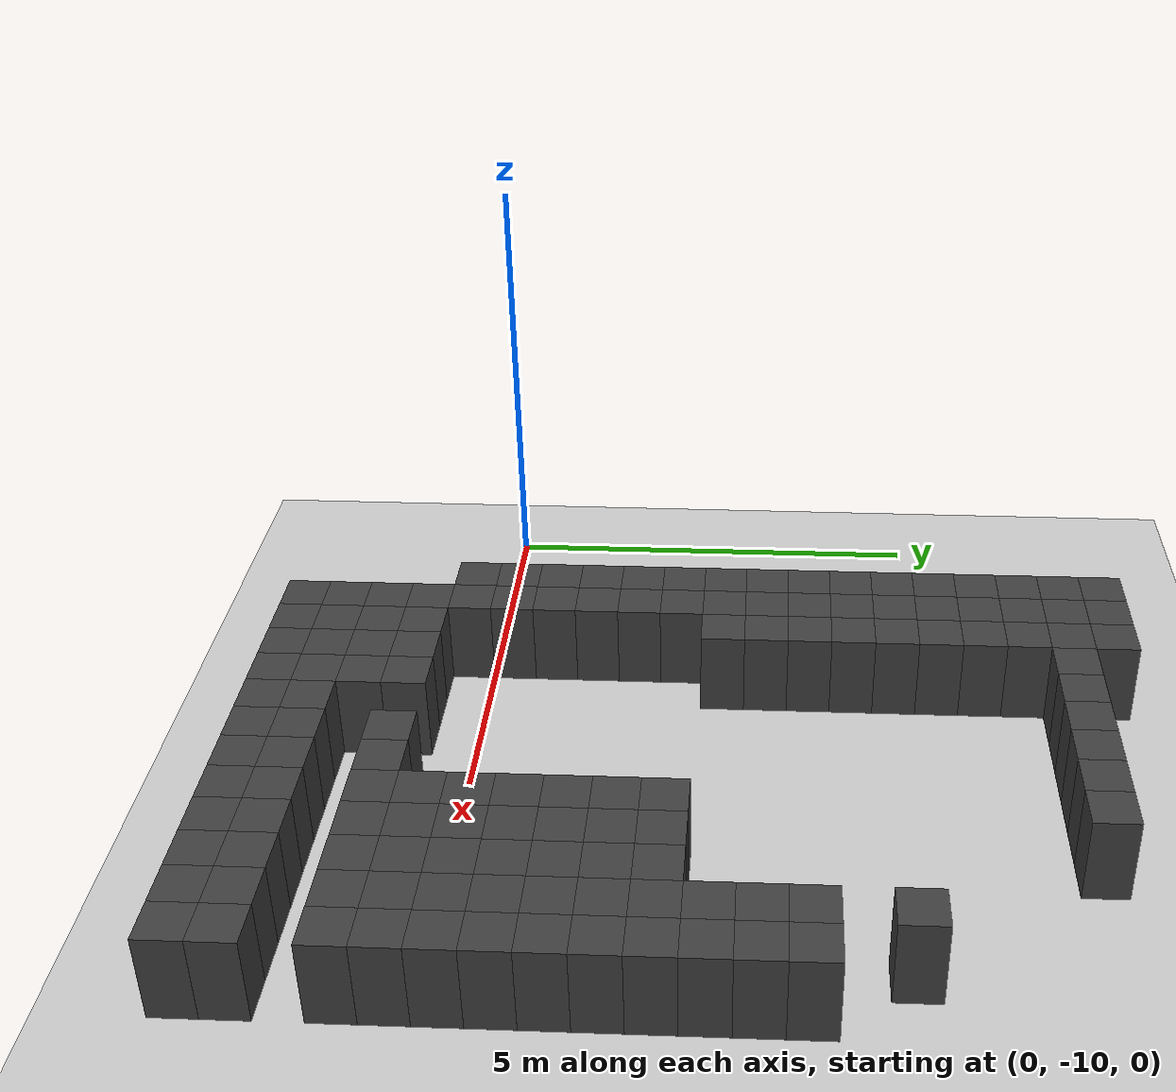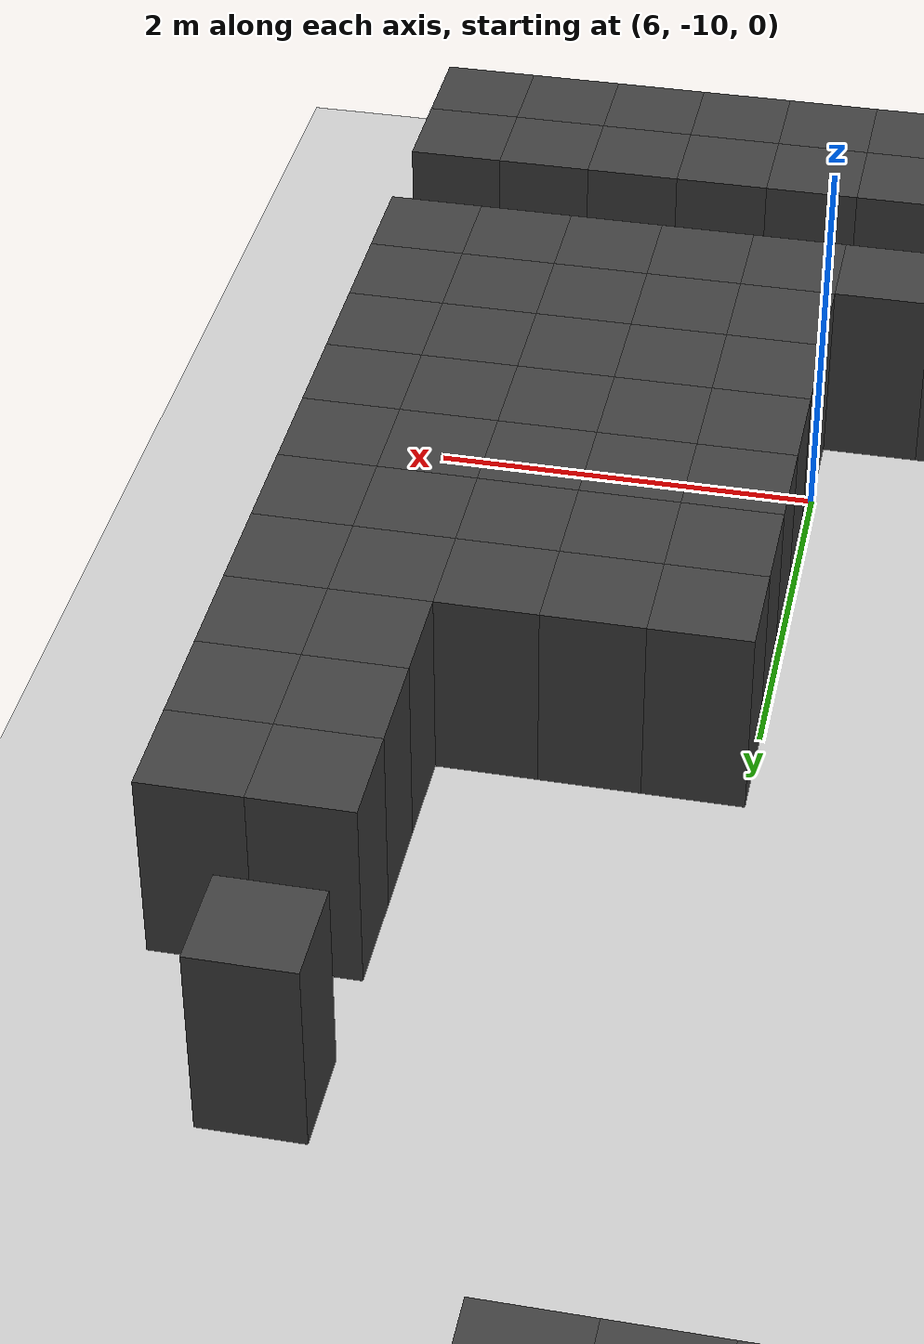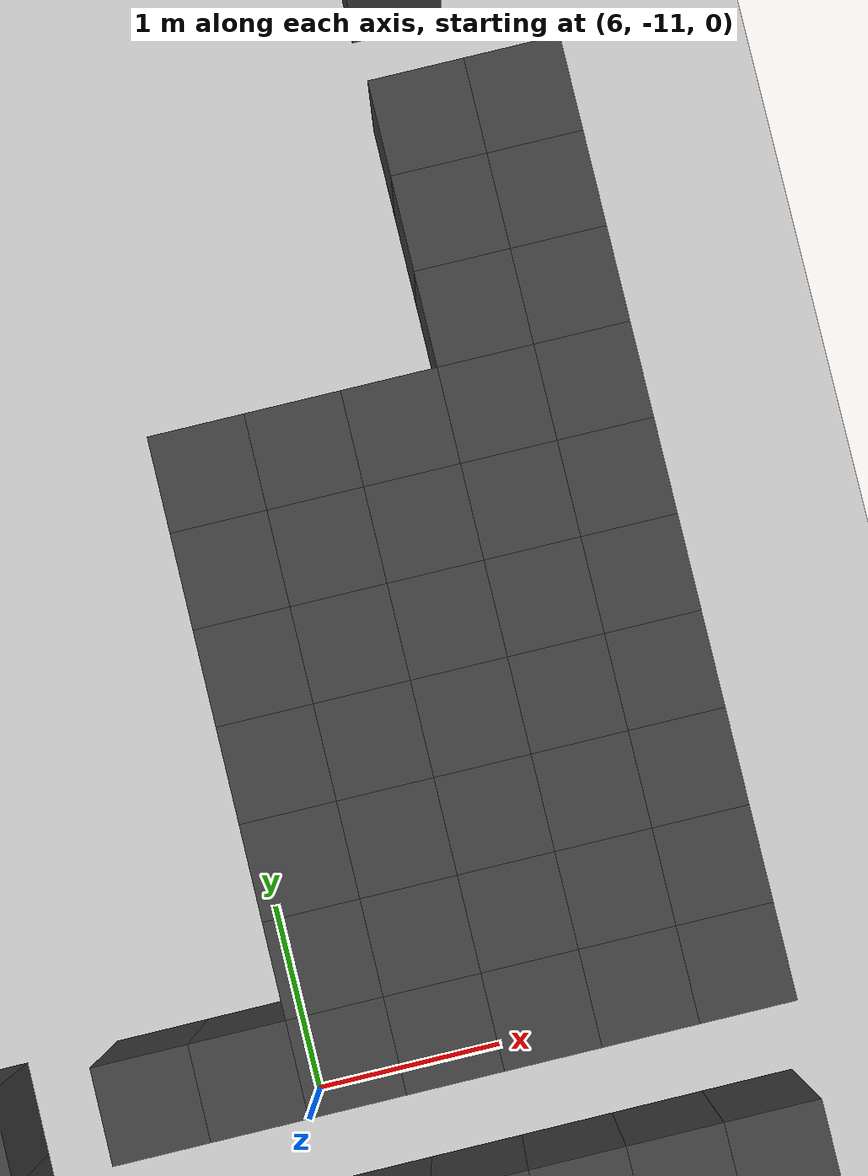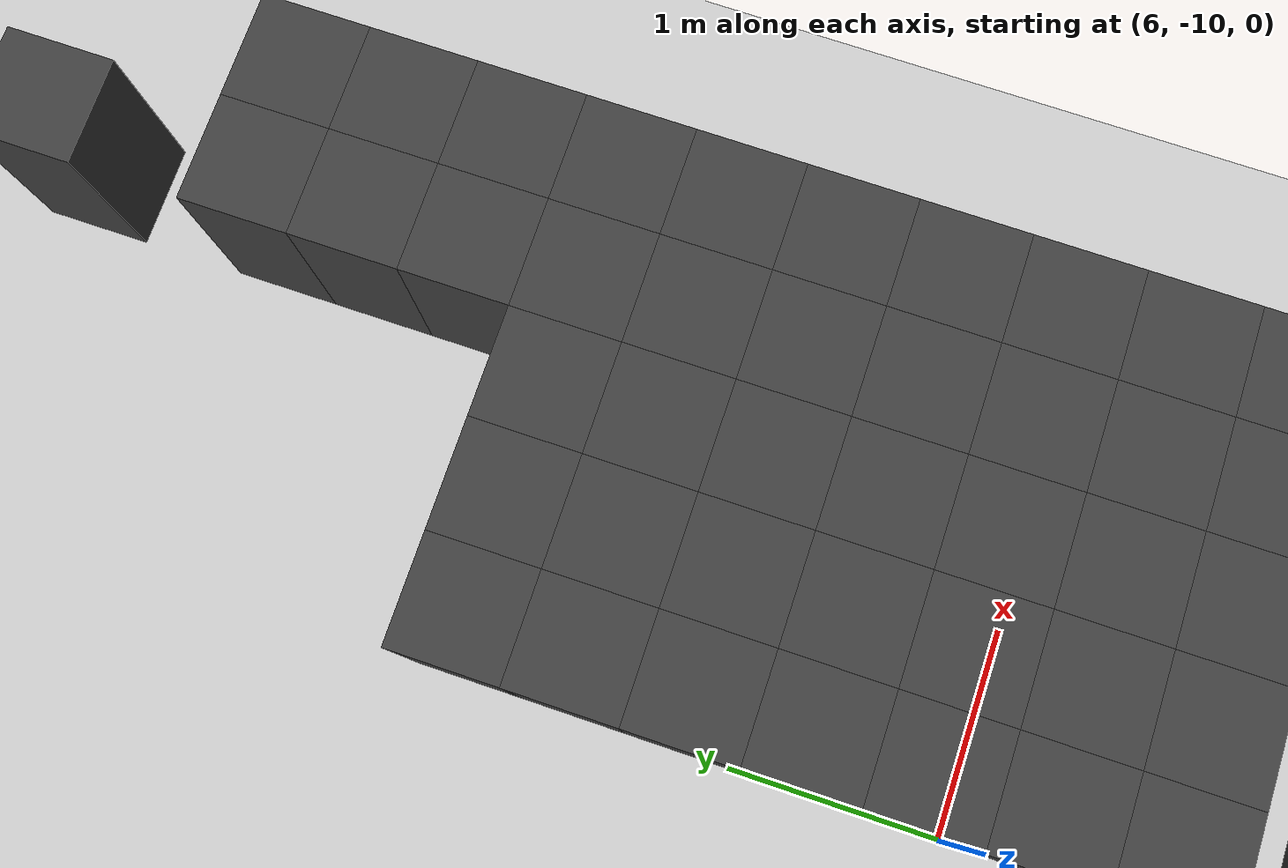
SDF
<sdf version="1.7">
 <world name="map_13994">
  <model name="ground_plane">
   <static>true</static>
   <link name="link">
    <collision name="collision">
     <geometry><plane><normal>0 0 1</normal><size>200 200</size></plane></geometry>
    </collision>
    <visual name="visual">
     <geometry><plane><normal>0 0 1</normal><size>200 200</size></plane></geometry>
     <material><ambient>0.8 0.8 0.8 1</ambient><diffuse>0.8 0.8 0.8 1</diffuse></material>
    </visual>
   </link>
  </model>
  <model name="maze_environment">
   <static>true</static>
   <link name="wall_1003">
    <pose>2.250 -2.750 0.500 0 0 0</pose>
    <collision name="col"><geometry><box><size>0.5 0.5 1.0</size></box></geometry></collision>
    <visual name="vis">
     <geometry><box><size>0.5 0.5 1.0</size></box></geometry>
     <material><ambient>0.15 0.15 0.15 1</ambient><diffuse>0.25 0.25 0.25 1</diffuse></material>
    </visual>
   </link>
   <link name="wall_1004">
    <pose>2.750 -2.750 0.500 0 0 0</pose>
    <collision name="col"><geometry><box><size>0.5 0.5 1.0</size></box></geometry></collision>
    <visual name="vis">
     <geometry><box><size>0.5 0.5 1.0</size></box></geometry>
     <material><ambient>0.15 0.15 0.15 1</ambient><diffuse>0.25 0.25 0.25 1</diffuse></material>
    </visual>
   </link>
   <link name="wall_1005">
    <pose>3.250 -2.750 0.500 0 0 0</pose>
    <collision name="col"><geometry><box><size>0.5 0.5 1.0</size></box></geometry></collision>
    <visual name="vis">
     <geometry><box><size>0.5 0.5 1.0</size></box></geometry>
     <material><ambient>0.15 0.15 0.15 1</ambient><diffuse>0.25 0.25 0.25 1</diffuse></material>
    </visual>
   </link>
   <link name="wall_1044">
    <pose>2.250 -3.250 0.500 0 0 0</pose>
    <collision name="col"><geometry><box><size>0.5 0.5 1.0</size></box></geometry></collision>
    <visual name="vis">
     <geometry><box><size>0.5 0.5 1.0</size></box></geometry>
     <material><ambient>0.15 0.15 0.15 1</ambient><diffuse>0.25 0.25 0.25 1</diffuse></material>
    </visual>
   </link>
   <link name="wall_1045">
    <pose>2.750 -3.250 0.500 0 0 0</pose>
    <collision name="col"><geometry><box><size>0.5 0.5 1.0</size></box></geometry></collision>
    <visual name="vis">
     <geometry><box><size>0.5 0.5 1.0</size></box></geometry>
     <material><ambient>0.15 0.15 0.15 1</ambient><diffuse>0.25 0.25 0.25 1</diffuse></material>
    </visual>
   </link>
   <link name="wall_1046">
    <pose>3.250 -3.250 0.500 0 0 0</pose>
    <collision name="col"><geometry><box><size>0.5 0.5 1.0</size></box></geometry></collision>
    <visual name="vis">
     <geometry><box><size>0.5 0.5 1.0</size></box></geometry>
     <material><ambient>0.15 0.15 0.15 1</ambient><diffuse>0.25 0.25 0.25 1</diffuse></material>
    </visual>
   </link>
   <link name="wall_1047">
    <pose>3.750 -3.250 0.500 0 0 0</pose>
    <collision name="col"><geometry><box><size>0.5 0.5 1.0</size></box></geometry></collision>
    <visual name="vis">
     <geometry><box><size>0.5 0.5 1.0</size></box></geometry>
     <material><ambient>0.15 0.15 0.15 1</ambient><diffuse>0.25 0.25 0.25 1</diffuse></material>
    </visual>
   </link>
   <link name="wall_1048">
    <pose>4.250 -3.250 0.500 0 0 0</pose>
    <collision name="col"><geometry><box><size>0.5 0.5 1.0</size></box></geometry></collision>
    <visual name="vis">
     <geometry><box><size>0.5 0.5 1.0</size></box></geometry>
     <material><ambient>0.15 0.15 0.15 1</ambient><diffuse>0.25 0.25 0.25 1</diffuse></material>
    </visual>
   </link>
   <link name="wall_1049">
    <pose>4.750 -3.250 0.500 0 0 0</pose>
    <collision name="col"><geometry><box><size>0.5 0.5 1.0</size></box></geometry></collision>
    <visual name="vis">
     <geometry><box><size>0.5 0.5 1.0</size></box></geometry>
     <material><ambient>0.15 0.15 0.15 1</ambient><diffuse>0.25 0.25 0.25 1</diffuse></material>
    </visual>
   </link>
   <link name="wall_1050">
    <pose>5.250 -3.250 0.500 0 0 0</pose>
    <collision name="col"><geometry><box><size>0.5 0.5 1.0</size></box></geometry></collision>
    <visual name="vis">
     <geometry><box><size>0.5 0.5 1.0</size></box></geometry>
     <material><ambient>0.15 0.15 0.15 1</ambient><diffuse>0.25 0.25 0.25 1</diffuse></material>
    </visual>
   </link>
   <link name="wall_1051">
    <pose>5.750 -3.250 0.500 0 0 0</pose>
    <collision name="col"><geometry><box><size>0.5 0.5 1.0</size></box></geometry></collision>
    <visual name="vis">
     <geometry><box><size>0.5 0.5 1.0</size></box></geometry>
     <material><ambient>0.15 0.15 0.15 1</ambient><diffuse>0.25 0.25 0.25 1</diffuse></material>
    </visual>
   </link>
   <link name="wall_1052">
    <pose>6.250 -3.250 0.500 0 0 0</pose>
    <collision name="col"><geometry><box><size>0.5 0.5 1.0</size></box></geometry></collision>
    <visual name="vis">
     <geometry><box><size>0.5 0.5 1.0</size></box></geometry>
     <material><ambient>0.15 0.15 0.15 1</ambient><diffuse>0.25 0.25 0.25 1</diffuse></material>
    </visual>
   </link>
   <link name="wall_1085">
    <pose>2.250 -3.750 0.500 0 0 0</pose>
    <collision name="col"><geometry><box><size>0.5 0.5 1.0</size></box></geometry></collision>
    <visual name="vis">
     <geometry><box><size>0.5 0.5 1.0</size></box></geometry>
     <material><ambient>0.15 0.15 0.15 1</ambient><diffuse>0.25 0.25 0.25 1</diffuse></material>
    </visual>
   </link>
   <link name="wall_1086">
    <pose>2.750 -3.750 0.500 0 0 0</pose>
    <collision name="col"><geometry><box><size>0.5 0.5 1.0</size></box></geometry></collision>
    <visual name="vis">
     <geometry><box><size>0.5 0.5 1.0</size></box></geometry>
     <material><ambient>0.15 0.15 0.15 1</ambient><diffuse>0.25 0.25 0.25 1</diffuse></material>
    </visual>
   </link>
   <link name="wall_1087">
    <pose>3.250 -3.750 0.500 0 0 0</pose>
    <collision name="col"><geometry><box><size>0.5 0.5 1.0</size></box></geometry></collision>
    <visual name="vis">
     <geometry><box><size>0.5 0.5 1.0</size></box></geometry>
     <material><ambient>0.15 0.15 0.15 1</ambient><diffuse>0.25 0.25 0.25 1</diffuse></material>
    </visual>
   </link>
   <link name="wall_1120">
    <pose>2.250 -4.250 0.500 0 0 0</pose>
    <collision name="col"><geometry><box><size>0.5 0.5 1.0</size></box></geometry></collision>
    <visual name="vis">
     <geometry><box><size>0.5 0.5 1.0</size></box></geometry>
     <material><ambient>0.15 0.15 0.15 1</ambient><diffuse>0.25 0.25 0.25 1</diffuse></material>
    </visual>
   </link>
   <link name="wall_1121">
    <pose>2.750 -4.250 0.500 0 0 0</pose>
    <collision name="col"><geometry><box><size>0.5 0.5 1.0</size></box></geometry></collision>
    <visual name="vis">
     <geometry><box><size>0.5 0.5 1.0</size></box></geometry>
     <material><ambient>0.15 0.15 0.15 1</ambient><diffuse>0.25 0.25 0.25 1</diffuse></material>
    </visual>
   </link>
   <link name="wall_1122">
    <pose>3.250 -4.250 0.500 0 0 0</pose>
    <collision name="col"><geometry><box><size>0.5 0.5 1.0</size></box></geometry></collision>
    <visual name="vis">
     <geometry><box><size>0.5 0.5 1.0</size></box></geometry>
     <material><ambient>0.15 0.15 0.15 1</ambient><diffuse>0.25 0.25 0.25 1</diffuse></material>
    </visual>
   </link>
   <link name="wall_1150">
    <pose>2.250 -4.750 0.500 0 0 0</pose>
    <collision name="col"><geometry><box><size>0.5 0.5 1.0</size></box></geometry></collision>
    <visual name="vis">
     <geometry><box><size>0.5 0.5 1.0</size></box></geometry>
     <material><ambient>0.15 0.15 0.15 1</ambient><diffuse>0.25 0.25 0.25 1</diffuse></material>
    </visual>
   </link>
   <link name="wall_1151">
    <pose>2.750 -4.750 0.500 0 0 0</pose>
    <collision name="col"><geometry><box><size>0.5 0.5 1.0</size></box></geometry></collision>
    <visual name="vis">
     <geometry><box><size>0.5 0.5 1.0</size></box></geometry>
     <material><ambient>0.15 0.15 0.15 1</ambient><diffuse>0.25 0.25 0.25 1</diffuse></material>
    </visual>
   </link>
   <link name="wall_1152">
    <pose>3.250 -4.750 0.500 0 0 0</pose>
    <collision name="col"><geometry><box><size>0.5 0.5 1.0</size></box></geometry></collision>
    <visual name="vis">
     <geometry><box><size>0.5 0.5 1.0</size></box></geometry>
     <material><ambient>0.15 0.15 0.15 1</ambient><diffuse>0.25 0.25 0.25 1</diffuse></material>
    </visual>
   </link>
   <link name="wall_1180">
    <pose>2.250 -5.250 0.500 0 0 0</pose>
    <collision name="col"><geometry><box><size>0.5 0.5 1.0</size></box></geometry></collision>
    <visual name="vis">
     <geometry><box><size>0.5 0.5 1.0</size></box></geometry>
     <material><ambient>0.15 0.15 0.15 1</ambient><diffuse>0.25 0.25 0.25 1</diffuse></material>
    </visual>
   </link>
   <link name="wall_1181">
    <pose>2.750 -5.250 0.500 0 0 0</pose>
    <collision name="col"><geometry><box><size>0.5 0.5 1.0</size></box></geometry></collision>
    <visual name="vis">
     <geometry><box><size>0.5 0.5 1.0</size></box></geometry>
     <material><ambient>0.15 0.15 0.15 1</ambient><diffuse>0.25 0.25 0.25 1</diffuse></material>
    </visual>
   </link>
   <link name="wall_1182">
    <pose>3.250 -5.250 0.500 0 0 0</pose>
    <collision name="col"><geometry><box><size>0.5 0.5 1.0</size></box></geometry></collision>
    <visual name="vis">
     <geometry><box><size>0.5 0.5 1.0</size></box></geometry>
     <material><ambient>0.15 0.15 0.15 1</ambient><diffuse>0.25 0.25 0.25 1</diffuse></material>
    </visual>
   </link>
   <link name="wall_1183">
    <pose>7.750 -5.250 0.500 0 0 0</pose>
    <collision name="col"><geometry><box><size>0.5 0.5 1.0</size></box></geometry></collision>
    <visual name="vis">
     <geometry><box><size>0.5 0.5 1.0</size></box></geometry>
     <material><ambient>0.15 0.15 0.15 1</ambient><diffuse>0.25 0.25 0.25 1</diffuse></material>
    </visual>
   </link>
   <link name="wall_1215">
    <pose>2.250 -5.750 0.500 0 0 0</pose>
    <collision name="col"><geometry><box><size>0.5 0.5 1.0</size></box></geometry></collision>
    <visual name="vis">
     <geometry><box><size>0.5 0.5 1.0</size></box></geometry>
     <material><ambient>0.15 0.15 0.15 1</ambient><diffuse>0.25 0.25 0.25 1</diffuse></material>
    </visual>
   </link>
   <link name="wall_1216">
    <pose>2.750 -5.750 0.500 0 0 0</pose>
    <collision name="col"><geometry><box><size>0.5 0.5 1.0</size></box></geometry></collision>
    <visual name="vis">
     <geometry><box><size>0.5 0.5 1.0</size></box></geometry>
     <material><ambient>0.15 0.15 0.15 1</ambient><diffuse>0.25 0.25 0.25 1</diffuse></material>
    </visual>
   </link>
   <link name="wall_1217">
    <pose>3.250 -5.750 0.500 0 0 0</pose>
    <collision name="col"><geometry><box><size>0.5 0.5 1.0</size></box></geometry></collision>
    <visual name="vis">
     <geometry><box><size>0.5 0.5 1.0</size></box></geometry>
     <material><ambient>0.15 0.15 0.15 1</ambient><diffuse>0.25 0.25 0.25 1</diffuse></material>
    </visual>
   </link>
   <link name="wall_1245">
    <pose>2.250 -6.250 0.500 0 0 0</pose>
    <collision name="col"><geometry><box><size>0.5 0.5 1.0</size></box></geometry></collision>
    <visual name="vis">
     <geometry><box><size>0.5 0.5 1.0</size></box></geometry>
     <material><ambient>0.15 0.15 0.15 1</ambient><diffuse>0.25 0.25 0.25 1</diffuse></material>
    </visual>
   </link>
   <link name="wall_1246">
    <pose>2.750 -6.250 0.500 0 0 0</pose>
    <collision name="col"><geometry><box><size>0.5 0.5 1.0</size></box></geometry></collision>
    <visual name="vis">
     <geometry><box><size>0.5 0.5 1.0</size></box></geometry>
     <material><ambient>0.15 0.15 0.15 1</ambient><diffuse>0.25 0.25 0.25 1</diffuse></material>
    </visual>
   </link>
   <link name="wall_1247">
    <pose>3.250 -6.250 0.500 0 0 0</pose>
    <collision name="col"><geometry><box><size>0.5 0.5 1.0</size></box></geometry></collision>
    <visual name="vis">
     <geometry><box><size>0.5 0.5 1.0</size></box></geometry>
     <material><ambient>0.15 0.15 0.15 1</ambient><diffuse>0.25 0.25 0.25 1</diffuse></material>
    </visual>
   </link>
   <link name="wall_1248">
    <pose>7.750 -6.250 0.500 0 0 0</pose>
    <collision name="col"><geometry><box><size>0.5 0.5 1.0</size></box></geometry></collision>
    <visual name="vis">
     <geometry><box><size>0.5 0.5 1.0</size></box></geometry>
     <material><ambient>0.15 0.15 0.15 1</ambient><diffuse>0.25 0.25 0.25 1</diffuse></material>
    </visual>
   </link>
   <link name="wall_1249">
    <pose>8.250 -6.250 0.500 0 0 0</pose>
    <collision name="col"><geometry><box><size>0.5 0.5 1.0</size></box></geometry></collision>
    <visual name="vis">
     <geometry><box><size>0.5 0.5 1.0</size></box></geometry>
     <material><ambient>0.15 0.15 0.15 1</ambient><diffuse>0.25 0.25 0.25 1</diffuse></material>
    </visual>
   </link>
   <link name="wall_1282">
    <pose>2.250 -6.750 0.500 0 0 0</pose>
    <collision name="col"><geometry><box><size>0.5 0.5 1.0</size></box></geometry></collision>
    <visual name="vis">
     <geometry><box><size>0.5 0.5 1.0</size></box></geometry>
     <material><ambient>0.15 0.15 0.15 1</ambient><diffuse>0.25 0.25 0.25 1</diffuse></material>
    </visual>
   </link>
   <link name="wall_1283">
    <pose>2.750 -6.750 0.500 0 0 0</pose>
    <collision name="col"><geometry><box><size>0.5 0.5 1.0</size></box></geometry></collision>
    <visual name="vis">
     <geometry><box><size>0.5 0.5 1.0</size></box></geometry>
     <material><ambient>0.15 0.15 0.15 1</ambient><diffuse>0.25 0.25 0.25 1</diffuse></material>
    </visual>
   </link>
   <link name="wall_1284">
    <pose>3.250 -6.750 0.500 0 0 0</pose>
    <collision name="col"><geometry><box><size>0.5 0.5 1.0</size></box></geometry></collision>
    <visual name="vis">
     <geometry><box><size>0.5 0.5 1.0</size></box></geometry>
     <material><ambient>0.15 0.15 0.15 1</ambient><diffuse>0.25 0.25 0.25 1</diffuse></material>
    </visual>
   </link>
   <link name="wall_1285">
    <pose>7.750 -6.750 0.500 0 0 0</pose>
    <collision name="col"><geometry><box><size>0.5 0.5 1.0</size></box></geometry></collision>
    <visual name="vis">
     <geometry><box><size>0.5 0.5 1.0</size></box></geometry>
     <material><ambient>0.15 0.15 0.15 1</ambient><diffuse>0.25 0.25 0.25 1</diffuse></material>
    </visual>
   </link>
   <link name="wall_1286">
    <pose>8.250 -6.750 0.500 0 0 0</pose>
    <collision name="col"><geometry><box><size>0.5 0.5 1.0</size></box></geometry></collision>
    <visual name="vis">
     <geometry><box><size>0.5 0.5 1.0</size></box></geometry>
     <material><ambient>0.15 0.15 0.15 1</ambient><diffuse>0.25 0.25 0.25 1</diffuse></material>
    </visual>
   </link>
   <link name="wall_1319">
    <pose>2.250 -7.250 0.500 0 0 0</pose>
    <collision name="col"><geometry><box><size>0.5 0.5 1.0</size></box></geometry></collision>
    <visual name="vis">
     <geometry><box><size>0.5 0.5 1.0</size></box></geometry>
     <material><ambient>0.15 0.15 0.15 1</ambient><diffuse>0.25 0.25 0.25 1</diffuse></material>
    </visual>
   </link>
   <link name="wall_1320">
    <pose>2.750 -7.250 0.500 0 0 0</pose>
    <collision name="col"><geometry><box><size>0.5 0.5 1.0</size></box></geometry></collision>
    <visual name="vis">
     <geometry><box><size>0.5 0.5 1.0</size></box></geometry>
     <material><ambient>0.15 0.15 0.15 1</ambient><diffuse>0.25 0.25 0.25 1</diffuse></material>
    </visual>
   </link>
   <link name="wall_1321">
    <pose>3.250 -7.250 0.500 0 0 0</pose>
    <collision name="col"><geometry><box><size>0.5 0.5 1.0</size></box></geometry></collision>
    <visual name="vis">
     <geometry><box><size>0.5 0.5 1.0</size></box></geometry>
     <material><ambient>0.15 0.15 0.15 1</ambient><diffuse>0.25 0.25 0.25 1</diffuse></material>
    </visual>
   </link>
   <link name="wall_1322">
    <pose>7.750 -7.250 0.500 0 0 0</pose>
    <collision name="col"><geometry><box><size>0.5 0.5 1.0</size></box></geometry></collision>
    <visual name="vis">
     <geometry><box><size>0.5 0.5 1.0</size></box></geometry>
     <material><ambient>0.15 0.15 0.15 1</ambient><diffuse>0.25 0.25 0.25 1</diffuse></material>
    </visual>
   </link>
   <link name="wall_1323">
    <pose>8.250 -7.250 0.500 0 0 0</pose>
    <collision name="col"><geometry><box><size>0.5 0.5 1.0</size></box></geometry></collision>
    <visual name="vis">
     <geometry><box><size>0.5 0.5 1.0</size></box></geometry>
     <material><ambient>0.15 0.15 0.15 1</ambient><diffuse>0.25 0.25 0.25 1</diffuse></material>
    </visual>
   </link>
   <link name="wall_1356">
    <pose>2.250 -7.750 0.500 0 0 0</pose>
    <collision name="col"><geometry><box><size>0.5 0.5 1.0</size></box></geometry></collision>
    <visual name="vis">
     <geometry><box><size>0.5 0.5 1.0</size></box></geometry>
     <material><ambient>0.15 0.15 0.15 1</ambient><diffuse>0.25 0.25 0.25 1</diffuse></material>
    </visual>
   </link>
   <link name="wall_1357">
    <pose>2.750 -7.750 0.500 0 0 0</pose>
    <collision name="col"><geometry><box><size>0.5 0.5 1.0</size></box></geometry></collision>
    <visual name="vis">
     <geometry><box><size>0.5 0.5 1.0</size></box></geometry>
     <material><ambient>0.15 0.15 0.15 1</ambient><diffuse>0.25 0.25 0.25 1</diffuse></material>
    </visual>
   </link>
   <link name="wall_1358">
    <pose>6.250 -7.750 0.500 0 0 0</pose>
    <collision name="col"><geometry><box><size>0.5 0.5 1.0</size></box></geometry></collision>
    <visual name="vis">
     <geometry><box><size>0.5 0.5 1.0</size></box></geometry>
     <material><ambient>0.15 0.15 0.15 1</ambient><diffuse>0.25 0.25 0.25 1</diffuse></material>
    </visual>
   </link>
   <link name="wall_1359">
    <pose>6.750 -7.750 0.500 0 0 0</pose>
    <collision name="col"><geometry><box><size>0.5 0.5 1.0</size></box></geometry></collision>
    <visual name="vis">
     <geometry><box><size>0.5 0.5 1.0</size></box></geometry>
     <material><ambient>0.15 0.15 0.15 1</ambient><diffuse>0.25 0.25 0.25 1</diffuse></material>
    </visual>
   </link>
   <link name="wall_1360">
    <pose>7.250 -7.750 0.500 0 0 0</pose>
    <collision name="col"><geometry><box><size>0.5 0.5 1.0</size></box></geometry></collision>
    <visual name="vis">
     <geometry><box><size>0.5 0.5 1.0</size></box></geometry>
     <material><ambient>0.15 0.15 0.15 1</ambient><diffuse>0.25 0.25 0.25 1</diffuse></material>
    </visual>
   </link>
   <link name="wall_1361">
    <pose>7.750 -7.750 0.500 0 0 0</pose>
    <collision name="col"><geometry><box><size>0.5 0.5 1.0</size></box></geometry></collision>
    <visual name="vis">
     <geometry><box><size>0.5 0.5 1.0</size></box></geometry>
     <material><ambient>0.15 0.15 0.15 1</ambient><diffuse>0.25 0.25 0.25 1</diffuse></material>
    </visual>
   </link>
   <link name="wall_1362">
    <pose>8.250 -7.750 0.500 0 0 0</pose>
    <collision name="col"><geometry><box><size>0.5 0.5 1.0</size></box></geometry></collision>
    <visual name="vis">
     <geometry><box><size>0.5 0.5 1.0</size></box></geometry>
     <material><ambient>0.15 0.15 0.15 1</ambient><diffuse>0.25 0.25 0.25 1</diffuse></material>
    </visual>
   </link>
   <link name="wall_1399">
    <pose>2.250 -8.250 0.500 0 0 0</pose>
    <collision name="col"><geometry><box><size>0.5 0.5 1.0</size></box></geometry></collision>
    <visual name="vis">
     <geometry><box><size>0.5 0.5 1.0</size></box></geometry>
     <material><ambient>0.15 0.15 0.15 1</ambient><diffuse>0.25 0.25 0.25 1</diffuse></material>
    </visual>
   </link>
   <link name="wall_1400">
    <pose>2.750 -8.250 0.500 0 0 0</pose>
    <collision name="col"><geometry><box><size>0.5 0.5 1.0</size></box></geometry></collision>
    <visual name="vis">
     <geometry><box><size>0.5 0.5 1.0</size></box></geometry>
     <material><ambient>0.15 0.15 0.15 1</ambient><diffuse>0.25 0.25 0.25 1</diffuse></material>
    </visual>
   </link>
   <link name="wall_1401">
    <pose>6.250 -8.250 0.500 0 0 0</pose>
    <collision name="col"><geometry><box><size>0.5 0.5 1.0</size></box></geometry></collision>
    <visual name="vis">
     <geometry><box><size>0.5 0.5 1.0</size></box></geometry>
     <material><ambient>0.15 0.15 0.15 1</ambient><diffuse>0.25 0.25 0.25 1</diffuse></material>
    </visual>
   </link>
   <link name="wall_1402">
    <pose>6.750 -8.250 0.500 0 0 0</pose>
    <collision name="col"><geometry><box><size>0.5 0.5 1.0</size></box></geometry></collision>
    <visual name="vis">
     <geometry><box><size>0.5 0.5 1.0</size></box></geometry>
     <material><ambient>0.15 0.15 0.15 1</ambient><diffuse>0.25 0.25 0.25 1</diffuse></material>
    </visual>
   </link>
   <link name="wall_1403">
    <pose>7.250 -8.250 0.500 0 0 0</pose>
    <collision name="col"><geometry><box><size>0.5 0.5 1.0</size></box></geometry></collision>
    <visual name="vis">
     <geometry><box><size>0.5 0.5 1.0</size></box></geometry>
     <material><ambient>0.15 0.15 0.15 1</ambient><diffuse>0.25 0.25 0.25 1</diffuse></material>
    </visual>
   </link>
   <link name="wall_1404">
    <pose>7.750 -8.250 0.500 0 0 0</pose>
    <collision name="col"><geometry><box><size>0.5 0.5 1.0</size></box></geometry></collision>
    <visual name="vis">
     <geometry><box><size>0.5 0.5 1.0</size></box></geometry>
     <material><ambient>0.15 0.15 0.15 1</ambient><diffuse>0.25 0.25 0.25 1</diffuse></material>
    </visual>
   </link>
   <link name="wall_1405">
    <pose>8.250 -8.250 0.500 0 0 0</pose>
    <collision name="col"><geometry><box><size>0.5 0.5 1.0</size></box></geometry></collision>
    <visual name="vis">
     <geometry><box><size>0.5 0.5 1.0</size></box></geometry>
     <material><ambient>0.15 0.15 0.15 1</ambient><diffuse>0.25 0.25 0.25 1</diffuse></material>
    </visual>
   </link>
   <link name="wall_1442">
    <pose>2.250 -8.750 0.500 0 0 0</pose>
    <collision name="col"><geometry><box><size>0.5 0.5 1.0</size></box></geometry></collision>
    <visual name="vis">
     <geometry><box><size>0.5 0.5 1.0</size></box></geometry>
     <material><ambient>0.15 0.15 0.15 1</ambient><diffuse>0.25 0.25 0.25 1</diffuse></material>
    </visual>
   </link>
   <link name="wall_1443">
    <pose>2.750 -8.750 0.500 0 0 0</pose>
    <collision name="col"><geometry><box><size>0.5 0.5 1.0</size></box></geometry></collision>
    <visual name="vis">
     <geometry><box><size>0.5 0.5 1.0</size></box></geometry>
     <material><ambient>0.15 0.15 0.15 1</ambient><diffuse>0.25 0.25 0.25 1</diffuse></material>
    </visual>
   </link>
   <link name="wall_1444">
    <pose>6.250 -8.750 0.500 0 0 0</pose>
    <collision name="col"><geometry><box><size>0.5 0.5 1.0</size></box></geometry></collision>
    <visual name="vis">
     <geometry><box><size>0.5 0.5 1.0</size></box></geometry>
     <material><ambient>0.15 0.15 0.15 1</ambient><diffuse>0.25 0.25 0.25 1</diffuse></material>
    </visual>
   </link>
   <link name="wall_1445">
    <pose>6.750 -8.750 0.500 0 0 0</pose>
    <collision name="col"><geometry><box><size>0.5 0.5 1.0</size></box></geometry></collision>
    <visual name="vis">
     <geometry><box><size>0.5 0.5 1.0</size></box></geometry>
     <material><ambient>0.15 0.15 0.15 1</ambient><diffuse>0.25 0.25 0.25 1</diffuse></material>
    </visual>
   </link>
   <link name="wall_1446">
    <pose>7.250 -8.750 0.500 0 0 0</pose>
    <collision name="col"><geometry><box><size>0.5 0.5 1.0</size></box></geometry></collision>
    <visual name="vis">
     <geometry><box><size>0.5 0.5 1.0</size></box></geometry>
     <material><ambient>0.15 0.15 0.15 1</ambient><diffuse>0.25 0.25 0.25 1</diffuse></material>
    </visual>
   </link>
   <link name="wall_1447">
    <pose>7.750 -8.750 0.500 0 0 0</pose>
    <collision name="col"><geometry><box><size>0.5 0.5 1.0</size></box></geometry></collision>
    <visual name="vis">
     <geometry><box><size>0.5 0.5 1.0</size></box></geometry>
     <material><ambient>0.15 0.15 0.15 1</ambient><diffuse>0.25 0.25 0.25 1</diffuse></material>
    </visual>
   </link>
   <link name="wall_1448">
    <pose>8.250 -8.750 0.500 0 0 0</pose>
    <collision name="col"><geometry><box><size>0.5 0.5 1.0</size></box></geometry></collision>
    <visual name="vis">
     <geometry><box><size>0.5 0.5 1.0</size></box></geometry>
     <material><ambient>0.15 0.15 0.15 1</ambient><diffuse>0.25 0.25 0.25 1</diffuse></material>
    </visual>
   </link>
   <link name="wall_1485">
    <pose>2.250 -9.250 0.500 0 0 0</pose>
    <collision name="col"><geometry><box><size>0.5 0.5 1.0</size></box></geometry></collision>
    <visual name="vis">
     <geometry><box><size>0.5 0.5 1.0</size></box></geometry>
     <material><ambient>0.15 0.15 0.15 1</ambient><diffuse>0.25 0.25 0.25 1</diffuse></material>
    </visual>
   </link>
   <link name="wall_1486">
    <pose>2.750 -9.250 0.500 0 0 0</pose>
    <collision name="col"><geometry><box><size>0.5 0.5 1.0</size></box></geometry></collision>
    <visual name="vis">
     <geometry><box><size>0.5 0.5 1.0</size></box></geometry>
     <material><ambient>0.15 0.15 0.15 1</ambient><diffuse>0.25 0.25 0.25 1</diffuse></material>
    </visual>
   </link>
   <link name="wall_1487">
    <pose>6.250 -9.250 0.500 0 0 0</pose>
    <collision name="col"><geometry><box><size>0.5 0.5 1.0</size></box></geometry></collision>
    <visual name="vis">
     <geometry><box><size>0.5 0.5 1.0</size></box></geometry>
     <material><ambient>0.15 0.15 0.15 1</ambient><diffuse>0.25 0.25 0.25 1</diffuse></material>
    </visual>
   </link>
   <link name="wall_1488">
    <pose>6.750 -9.250 0.500 0 0 0</pose>
    <collision name="col"><geometry><box><size>0.5 0.5 1.0</size></box></geometry></collision>
    <visual name="vis">
     <geometry><box><size>0.5 0.5 1.0</size></box></geometry>
     <material><ambient>0.15 0.15 0.15 1</ambient><diffuse>0.25 0.25 0.25 1</diffuse></material>
    </visual>
   </link>
   <link name="wall_1489">
    <pose>7.250 -9.250 0.500 0 0 0</pose>
    <collision name="col"><geometry><box><size>0.5 0.5 1.0</size></box></geometry></collision>
    <visual name="vis">
     <geometry><box><size>0.5 0.5 1.0</size></box></geometry>
     <material><ambient>0.15 0.15 0.15 1</ambient><diffuse>0.25 0.25 0.25 1</diffuse></material>
    </visual>
   </link>
   <link name="wall_1490">
    <pose>7.750 -9.250 0.500 0 0 0</pose>
    <collision name="col"><geometry><box><size>0.5 0.5 1.0</size></box></geometry></collision>
    <visual name="vis">
     <geometry><box><size>0.5 0.5 1.0</size></box></geometry>
     <material><ambient>0.15 0.15 0.15 1</ambient><diffuse>0.25 0.25 0.25 1</diffuse></material>
    </visual>
   </link>
   <link name="wall_1491">
    <pose>8.250 -9.250 0.500 0 0 0</pose>
    <collision name="col"><geometry><box><size>0.5 0.5 1.0</size></box></geometry></collision>
    <visual name="vis">
     <geometry><box><size>0.5 0.5 1.0</size></box></geometry>
     <material><ambient>0.15 0.15 0.15 1</ambient><diffuse>0.25 0.25 0.25 1</diffuse></material>
    </visual>
   </link>
   <link name="wall_1521">
    <pose>2.250 -9.750 0.500 0 0 0</pose>
    <collision name="col"><geometry><box><size>0.5 0.5 1.0</size></box></geometry></collision>
    <visual name="vis">
     <geometry><box><size>0.5 0.5 1.0</size></box></geometry>
     <material><ambient>0.15 0.15 0.15 1</ambient><diffuse>0.25 0.25 0.25 1</diffuse></material>
    </visual>
   </link>
   <link name="wall_1522">
    <pose>2.750 -9.750 0.500 0 0 0</pose>
    <collision name="col"><geometry><box><size>0.5 0.5 1.0</size></box></geometry></collision>
    <visual name="vis">
     <geometry><box><size>0.5 0.5 1.0</size></box></geometry>
     <material><ambient>0.15 0.15 0.15 1</ambient><diffuse>0.25 0.25 0.25 1</diffuse></material>
    </visual>
   </link>
   <link name="wall_1523">
    <pose>6.250 -9.750 0.500 0 0 0</pose>
    <collision name="col"><geometry><box><size>0.5 0.5 1.0</size></box></geometry></collision>
    <visual name="vis">
     <geometry><box><size>0.5 0.5 1.0</size></box></geometry>
     <material><ambient>0.15 0.15 0.15 1</ambient><diffuse>0.25 0.25 0.25 1</diffuse></material>
    </visual>
   </link>
   <link name="wall_1524">
    <pose>6.750 -9.750 0.500 0 0 0</pose>
    <collision name="col"><geometry><box><size>0.5 0.5 1.0</size></box></geometry></collision>
    <visual name="vis">
     <geometry><box><size>0.5 0.5 1.0</size></box></geometry>
     <material><ambient>0.15 0.15 0.15 1</ambient><diffuse>0.25 0.25 0.25 1</diffuse></material>
    </visual>
   </link>
   <link name="wall_1525">
    <pose>7.250 -9.750 0.500 0 0 0</pose>
    <collision name="col"><geometry><box><size>0.5 0.5 1.0</size></box></geometry></collision>
    <visual name="vis">
     <geometry><box><size>0.5 0.5 1.0</size></box></geometry>
     <material><ambient>0.15 0.15 0.15 1</ambient><diffuse>0.25 0.25 0.25 1</diffuse></material>
    </visual>
   </link>
   <link name="wall_1526">
    <pose>7.750 -9.750 0.500 0 0 0</pose>
    <collision name="col"><geometry><box><size>0.5 0.5 1.0</size></box></geometry></collision>
    <visual name="vis">
     <geometry><box><size>0.5 0.5 1.0</size></box></geometry>
     <material><ambient>0.15 0.15 0.15 1</ambient><diffuse>0.25 0.25 0.25 1</diffuse></material>
    </visual>
   </link>
   <link name="wall_1527">
    <pose>8.250 -9.750 0.500 0 0 0</pose>
    <collision name="col"><geometry><box><size>0.5 0.5 1.0</size></box></geometry></collision>
    <visual name="vis">
     <geometry><box><size>0.5 0.5 1.0</size></box></geometry>
     <material><ambient>0.15 0.15 0.15 1</ambient><diffuse>0.25 0.25 0.25 1</diffuse></material>
    </visual>
   </link>
   <link name="wall_1557">
    <pose>2.250 -10.250 0.500 0 0 0</pose>
    <collision name="col"><geometry><box><size>0.5 0.5 1.0</size></box></geometry></collision>
    <visual name="vis">
     <geometry><box><size>0.5 0.5 1.0</size></box></geometry>
     <material><ambient>0.15 0.15 0.15 1</ambient><diffuse>0.25 0.25 0.25 1</diffuse></material>
    </visual>
   </link>
   <link name="wall_1558">
    <pose>2.750 -10.250 0.500 0 0 0</pose>
    <collision name="col"><geometry><box><size>0.5 0.5 1.0</size></box></geometry></collision>
    <visual name="vis">
     <geometry><box><size>0.5 0.5 1.0</size></box></geometry>
     <material><ambient>0.15 0.15 0.15 1</ambient><diffuse>0.25 0.25 0.25 1</diffuse></material>
    </visual>
   </link>
   <link name="wall_1559">
    <pose>6.250 -10.250 0.500 0 0 0</pose>
    <collision name="col"><geometry><box><size>0.5 0.5 1.0</size></box></geometry></collision>
    <visual name="vis">
     <geometry><box><size>0.5 0.5 1.0</size></box></geometry>
     <material><ambient>0.15 0.15 0.15 1</ambient><diffuse>0.25 0.25 0.25 1</diffuse></material>
    </visual>
   </link>
   <link name="wall_1560">
    <pose>6.750 -10.250 0.500 0 0 0</pose>
    <collision name="col"><geometry><box><size>0.5 0.5 1.0</size></box></geometry></collision>
    <visual name="vis">
     <geometry><box><size>0.5 0.5 1.0</size></box></geometry>
     <material><ambient>0.15 0.15 0.15 1</ambient><diffuse>0.25 0.25 0.25 1</diffuse></material>
    </visual>
   </link>
   <link name="wall_1561">
    <pose>7.250 -10.250 0.500 0 0 0</pose>
    <collision name="col"><geometry><box><size>0.5 0.5 1.0</size></box></geometry></collision>
    <visual name="vis">
     <geometry><box><size>0.5 0.5 1.0</size></box></geometry>
     <material><ambient>0.15 0.15 0.15 1</ambient><diffuse>0.25 0.25 0.25 1</diffuse></material>
    </visual>
   </link>
   <link name="wall_1562">
    <pose>7.750 -10.250 0.500 0 0 0</pose>
    <collision name="col"><geometry><box><size>0.5 0.5 1.0</size></box></geometry></collision>
    <visual name="vis">
     <geometry><box><size>0.5 0.5 1.0</size></box></geometry>
     <material><ambient>0.15 0.15 0.15 1</ambient><diffuse>0.25 0.25 0.25 1</diffuse></material>
    </visual>
   </link>
   <link name="wall_1563">
    <pose>8.250 -10.250 0.500 0 0 0</pose>
    <collision name="col"><geometry><box><size>0.5 0.5 1.0</size></box></geometry></collision>
    <visual name="vis">
     <geometry><box><size>0.5 0.5 1.0</size></box></geometry>
     <material><ambient>0.15 0.15 0.15 1</ambient><diffuse>0.25 0.25 0.25 1</diffuse></material>
    </visual>
   </link>
   <link name="wall_1594">
    <pose>2.750 -10.750 0.500 0 0 0</pose>
    <collision name="col"><geometry><box><size>0.5 0.5 1.0</size></box></geometry></collision>
    <visual name="vis">
     <geometry><box><size>0.5 0.5 1.0</size></box></geometry>
     <material><ambient>0.15 0.15 0.15 1</ambient><diffuse>0.25 0.25 0.25 1</diffuse></material>
    </visual>
   </link>
   <link name="wall_1595">
    <pose>3.250 -10.750 0.500 0 0 0</pose>
    <collision name="col"><geometry><box><size>0.5 0.5 1.0</size></box></geometry></collision>
    <visual name="vis">
     <geometry><box><size>0.5 0.5 1.0</size></box></geometry>
     <material><ambient>0.15 0.15 0.15 1</ambient><diffuse>0.25 0.25 0.25 1</diffuse></material>
    </visual>
   </link>
   <link name="wall_1596">
    <pose>3.750 -10.750 0.500 0 0 0</pose>
    <collision name="col"><geometry><box><size>0.5 0.5 1.0</size></box></geometry></collision>
    <visual name="vis">
     <geometry><box><size>0.5 0.5 1.0</size></box></geometry>
     <material><ambient>0.15 0.15 0.15 1</ambient><diffuse>0.25 0.25 0.25 1</diffuse></material>
    </visual>
   </link>
   <link name="wall_1597">
    <pose>4.250 -10.750 0.500 0 0 0</pose>
    <collision name="col"><geometry><box><size>0.5 0.5 1.0</size></box></geometry></collision>
    <visual name="vis">
     <geometry><box><size>0.5 0.5 1.0</size></box></geometry>
     <material><ambient>0.15 0.15 0.15 1</ambient><diffuse>0.25 0.25 0.25 1</diffuse></material>
    </visual>
   </link>
   <link name="wall_1598">
    <pose>5.250 -10.750 0.500 0 0 0</pose>
    <collision name="col"><geometry><box><size>0.5 0.5 1.0</size></box></geometry></collision>
    <visual name="vis">
     <geometry><box><size>0.5 0.5 1.0</size></box></geometry>
     <material><ambient>0.15 0.15 0.15 1</ambient><diffuse>0.25 0.25 0.25 1</diffuse></material>
    </visual>
   </link>
   <link name="wall_1599">
    <pose>5.750 -10.750 0.500 0 0 0</pose>
    <collision name="col"><geometry><box><size>0.5 0.5 1.0</size></box></geometry></collision>
    <visual name="vis">
     <geometry><box><size>0.5 0.5 1.0</size></box></geometry>
     <material><ambient>0.15 0.15 0.15 1</ambient><diffuse>0.25 0.25 0.25 1</diffuse></material>
    </visual>
   </link>
   <link name="wall_1600">
    <pose>6.250 -10.750 0.500 0 0 0</pose>
    <collision name="col"><geometry><box><size>0.5 0.5 1.0</size></box></geometry></collision>
    <visual name="vis">
     <geometry><box><size>0.5 0.5 1.0</size></box></geometry>
     <material><ambient>0.15 0.15 0.15 1</ambient><diffuse>0.25 0.25 0.25 1</diffuse></material>
    </visual>
   </link>
   <link name="wall_1601">
    <pose>6.750 -10.750 0.500 0 0 0</pose>
    <collision name="col"><geometry><box><size>0.5 0.5 1.0</size></box></geometry></collision>
    <visual name="vis">
     <geometry><box><size>0.5 0.5 1.0</size></box></geometry>
     <material><ambient>0.15 0.15 0.15 1</ambient><diffuse>0.25 0.25 0.25 1</diffuse></material>
    </visual>
   </link>
   <link name="wall_1602">
    <pose>7.250 -10.750 0.500 0 0 0</pose>
    <collision name="col"><geometry><box><size>0.5 0.5 1.0</size></box></geometry></collision>
    <visual name="vis">
     <geometry><box><size>0.5 0.5 1.0</size></box></geometry>
     <material><ambient>0.15 0.15 0.15 1</ambient><diffuse>0.25 0.25 0.25 1</diffuse></material>
    </visual>
   </link>
   <link name="wall_1603">
    <pose>7.750 -10.750 0.500 0 0 0</pose>
    <collision name="col"><geometry><box><size>0.5 0.5 1.0</size></box></geometry></collision>
    <visual name="vis">
     <geometry><box><size>0.5 0.5 1.0</size></box></geometry>
     <material><ambient>0.15 0.15 0.15 1</ambient><diffuse>0.25 0.25 0.25 1</diffuse></material>
    </visual>
   </link>
   <link name="wall_1604">
    <pose>8.250 -10.750 0.500 0 0 0</pose>
    <collision name="col"><geometry><box><size>0.5 0.5 1.0</size></box></geometry></collision>
    <visual name="vis">
     <geometry><box><size>0.5 0.5 1.0</size></box></geometry>
     <material><ambient>0.15 0.15 0.15 1</ambient><diffuse>0.25 0.25 0.25 1</diffuse></material>
    </visual>
   </link>
   <link name="wall_1632">
    <pose>2.750 -11.250 0.500 0 0 0</pose>
    <collision name="col"><geometry><box><size>0.5 0.5 1.0</size></box></geometry></collision>
    <visual name="vis">
     <geometry><box><size>0.5 0.5 1.0</size></box></geometry>
     <material><ambient>0.15 0.15 0.15 1</ambient><diffuse>0.25 0.25 0.25 1</diffuse></material>
    </visual>
   </link>
   <link name="wall_1633">
    <pose>3.250 -11.250 0.500 0 0 0</pose>
    <collision name="col"><geometry><box><size>0.5 0.5 1.0</size></box></geometry></collision>
    <visual name="vis">
     <geometry><box><size>0.5 0.5 1.0</size></box></geometry>
     <material><ambient>0.15 0.15 0.15 1</ambient><diffuse>0.25 0.25 0.25 1</diffuse></material>
    </visual>
   </link>
   <link name="wall_1634">
    <pose>3.750 -11.250 0.500 0 0 0</pose>
    <collision name="col"><geometry><box><size>0.5 0.5 1.0</size></box></geometry></collision>
    <visual name="vis">
     <geometry><box><size>0.5 0.5 1.0</size></box></geometry>
     <material><ambient>0.15 0.15 0.15 1</ambient><diffuse>0.25 0.25 0.25 1</diffuse></material>
    </visual>
   </link>
   <link name="wall_1635">
    <pose>4.250 -11.250 0.500 0 0 0</pose>
    <collision name="col"><geometry><box><size>0.5 0.5 1.0</size></box></geometry></collision>
    <visual name="vis">
     <geometry><box><size>0.5 0.5 1.0</size></box></geometry>
     <material><ambient>0.15 0.15 0.15 1</ambient><diffuse>0.25 0.25 0.25 1</diffuse></material>
    </visual>
   </link>
   <link name="wall_1667">
    <pose>2.750 -11.750 0.500 0 0 0</pose>
    <collision name="col"><geometry><box><size>0.5 0.5 1.0</size></box></geometry></collision>
    <visual name="vis">
     <geometry><box><size>0.5 0.5 1.0</size></box></geometry>
     <material><ambient>0.15 0.15 0.15 1</ambient><diffuse>0.25 0.25 0.25 1</diffuse></material>
    </visual>
   </link>
   <link name="wall_1668">
    <pose>3.250 -11.750 0.500 0 0 0</pose>
    <collision name="col"><geometry><box><size>0.5 0.5 1.0</size></box></geometry></collision>
    <visual name="vis">
     <geometry><box><size>0.5 0.5 1.0</size></box></geometry>
     <material><ambient>0.15 0.15 0.15 1</ambient><diffuse>0.25 0.25 0.25 1</diffuse></material>
    </visual>
   </link>
   <link name="wall_1669">
    <pose>3.750 -11.750 0.500 0 0 0</pose>
    <collision name="col"><geometry><box><size>0.5 0.5 1.0</size></box></geometry></collision>
    <visual name="vis">
     <geometry><box><size>0.5 0.5 1.0</size></box></geometry>
     <material><ambient>0.15 0.15 0.15 1</ambient><diffuse>0.25 0.25 0.25 1</diffuse></material>
    </visual>
   </link>
   <link name="wall_1670">
    <pose>4.250 -11.750 0.500 0 0 0</pose>
    <collision name="col"><geometry><box><size>0.5 0.5 1.0</size></box></geometry></collision>
    <visual name="vis">
     <geometry><box><size>0.5 0.5 1.0</size></box></geometry>
     <material><ambient>0.15 0.15 0.15 1</ambient><diffuse>0.25 0.25 0.25 1</diffuse></material>
    </visual>
   </link>
   <link name="wall_1671">
    <pose>4.750 -11.750 0.500 0 0 0</pose>
    <collision name="col"><geometry><box><size>0.5 0.5 1.0</size></box></geometry></collision>
    <visual name="vis">
     <geometry><box><size>0.5 0.5 1.0</size></box></geometry>
     <material><ambient>0.15 0.15 0.15 1</ambient><diffuse>0.25 0.25 0.25 1</diffuse></material>
    </visual>
   </link>
   <link name="wall_1672">
    <pose>5.250 -11.750 0.500 0 0 0</pose>
    <collision name="col"><geometry><box><size>0.5 0.5 1.0</size></box></geometry></collision>
    <visual name="vis">
     <geometry><box><size>0.5 0.5 1.0</size></box></geometry>
     <material><ambient>0.15 0.15 0.15 1</ambient><diffuse>0.25 0.25 0.25 1</diffuse></material>
    </visual>
   </link>
   <link name="wall_1673">
    <pose>5.750 -11.750 0.500 0 0 0</pose>
    <collision name="col"><geometry><box><size>0.5 0.5 1.0</size></box></geometry></collision>
    <visual name="vis">
     <geometry><box><size>0.5 0.5 1.0</size></box></geometry>
     <material><ambient>0.15 0.15 0.15 1</ambient><diffuse>0.25 0.25 0.25 1</diffuse></material>
    </visual>
   </link>
   <link name="wall_1674">
    <pose>6.250 -11.750 0.500 0 0 0</pose>
    <collision name="col"><geometry><box><size>0.5 0.5 1.0</size></box></geometry></collision>
    <visual name="vis">
     <geometry><box><size>0.5 0.5 1.0</size></box></geometry>
     <material><ambient>0.15 0.15 0.15 1</ambient><diffuse>0.25 0.25 0.25 1</diffuse></material>
    </visual>
   </link>
   <link name="wall_1675">
    <pose>6.750 -11.750 0.500 0 0 0</pose>
    <collision name="col"><geometry><box><size>0.5 0.5 1.0</size></box></geometry></collision>
    <visual name="vis">
     <geometry><box><size>0.5 0.5 1.0</size></box></geometry>
     <material><ambient>0.15 0.15 0.15 1</ambient><diffuse>0.25 0.25 0.25 1</diffuse></material>
    </visual>
   </link>
   <link name="wall_1676">
    <pose>7.250 -11.750 0.500 0 0 0</pose>
    <collision name="col"><geometry><box><size>0.5 0.5 1.0</size></box></geometry></collision>
    <visual name="vis">
     <geometry><box><size>0.5 0.5 1.0</size></box></geometry>
     <material><ambient>0.15 0.15 0.15 1</ambient><diffuse>0.25 0.25 0.25 1</diffuse></material>
    </visual>
   </link>
   <link name="wall_1677">
    <pose>7.750 -11.750 0.500 0 0 0</pose>
    <collision name="col"><geometry><box><size>0.5 0.5 1.0</size></box></geometry></collision>
    <visual name="vis">
     <geometry><box><size>0.5 0.5 1.0</size></box></geometry>
     <material><ambient>0.15 0.15 0.15 1</ambient><diffuse>0.25 0.25 0.25 1</diffuse></material>
    </visual>
   </link>
   <link name="wall_1678">
    <pose>8.250 -11.750 0.500 0 0 0</pose>
    <collision name="col"><geometry><box><size>0.5 0.5 1.0</size></box></geometry></collision>
    <visual name="vis">
     <geometry><box><size>0.5 0.5 1.0</size></box></geometry>
     <material><ambient>0.15 0.15 0.15 1</ambient><diffuse>0.25 0.25 0.25 1</diffuse></material>
    </visual>
   </link>
   <link name="wall_1714">
    <pose>2.750 -12.250 0.500 0 0 0</pose>
    <collision name="col"><geometry><box><size>0.5 0.5 1.0</size></box></geometry></collision>
    <visual name="vis">
     <geometry><box><size>0.5 0.5 1.0</size></box></geometry>
     <material><ambient>0.15 0.15 0.15 1</ambient><diffuse>0.25 0.25 0.25 1</diffuse></material>
    </visual>
   </link>
   <link name="wall_1715">
    <pose>3.250 -12.250 0.500 0 0 0</pose>
    <collision name="col"><geometry><box><size>0.5 0.5 1.0</size></box></geometry></collision>
    <visual name="vis">
     <geometry><box><size>0.5 0.5 1.0</size></box></geometry>
     <material><ambient>0.15 0.15 0.15 1</ambient><diffuse>0.25 0.25 0.25 1</diffuse></material>
    </visual>
   </link>
   <link name="wall_1716">
    <pose>3.750 -12.250 0.500 0 0 0</pose>
    <collision name="col"><geometry><box><size>0.5 0.5 1.0</size></box></geometry></collision>
    <visual name="vis">
     <geometry><box><size>0.5 0.5 1.0</size></box></geometry>
     <material><ambient>0.15 0.15 0.15 1</ambient><diffuse>0.25 0.25 0.25 1</diffuse></material>
    </visual>
   </link>
   <link name="wall_1717">
    <pose>4.250 -12.250 0.500 0 0 0</pose>
    <collision name="col"><geometry><box><size>0.5 0.5 1.0</size></box></geometry></collision>
    <visual name="vis">
     <geometry><box><size>0.5 0.5 1.0</size></box></geometry>
     <material><ambient>0.15 0.15 0.15 1</ambient><diffuse>0.25 0.25 0.25 1</diffuse></material>
    </visual>
   </link>
   <link name="wall_1718">
    <pose>4.750 -12.250 0.500 0 0 0</pose>
    <collision name="col"><geometry><box><size>0.5 0.5 1.0</size></box></geometry></collision>
    <visual name="vis">
     <geometry><box><size>0.5 0.5 1.0</size></box></geometry>
     <material><ambient>0.15 0.15 0.15 1</ambient><diffuse>0.25 0.25 0.25 1</diffuse></material>
    </visual>
   </link>
   <link name="wall_1719">
    <pose>5.250 -12.250 0.500 0 0 0</pose>
    <collision name="col"><geometry><box><size>0.5 0.5 1.0</size></box></geometry></collision>
    <visual name="vis">
     <geometry><box><size>0.5 0.5 1.0</size></box></geometry>
     <material><ambient>0.15 0.15 0.15 1</ambient><diffuse>0.25 0.25 0.25 1</diffuse></material>
    </visual>
   </link>
   <link name="wall_1720">
    <pose>5.750 -12.250 0.500 0 0 0</pose>
    <collision name="col"><geometry><box><size>0.5 0.5 1.0</size></box></geometry></collision>
    <visual name="vis">
     <geometry><box><size>0.5 0.5 1.0</size></box></geometry>
     <material><ambient>0.15 0.15 0.15 1</ambient><diffuse>0.25 0.25 0.25 1</diffuse></material>
    </visual>
   </link>
   <link name="wall_1721">
    <pose>6.250 -12.250 0.500 0 0 0</pose>
    <collision name="col"><geometry><box><size>0.5 0.5 1.0</size></box></geometry></collision>
    <visual name="vis">
     <geometry><box><size>0.5 0.5 1.0</size></box></geometry>
     <material><ambient>0.15 0.15 0.15 1</ambient><diffuse>0.25 0.25 0.25 1</diffuse></material>
    </visual>
   </link>
   <link name="wall_1722">
    <pose>6.750 -12.250 0.500 0 0 0</pose>
    <collision name="col"><geometry><box><size>0.5 0.5 1.0</size></box></geometry></collision>
    <visual name="vis">
     <geometry><box><size>0.5 0.5 1.0</size></box></geometry>
     <material><ambient>0.15 0.15 0.15 1</ambient><diffuse>0.25 0.25 0.25 1</diffuse></material>
    </visual>
   </link>
   <link name="wall_1723">
    <pose>7.250 -12.250 0.500 0 0 0</pose>
    <collision name="col"><geometry><box><size>0.5 0.5 1.0</size></box></geometry></collision>
    <visual name="vis">
     <geometry><box><size>0.5 0.5 1.0</size></box></geometry>
     <material><ambient>0.15 0.15 0.15 1</ambient><diffuse>0.25 0.25 0.25 1</diffuse></material>
    </visual>
   </link>
   <link name="wall_1724">
    <pose>7.750 -12.250 0.500 0 0 0</pose>
    <collision name="col"><geometry><box><size>0.5 0.5 1.0</size></box></geometry></collision>
    <visual name="vis">
     <geometry><box><size>0.5 0.5 1.0</size></box></geometry>
     <material><ambient>0.15 0.15 0.15 1</ambient><diffuse>0.25 0.25 0.25 1</diffuse></material>
    </visual>
   </link>
   <link name="wall_1725">
    <pose>8.250 -12.250 0.500 0 0 0</pose>
    <collision name="col"><geometry><box><size>0.5 0.5 1.0</size></box></geometry></collision>
    <visual name="vis">
     <geometry><box><size>0.5 0.5 1.0</size></box></geometry>
     <material><ambient>0.15 0.15 0.15 1</ambient><diffuse>0.25 0.25 0.25 1</diffuse></material>
    </visual>
   </link>
  </model>
 </world>
</sdf>
